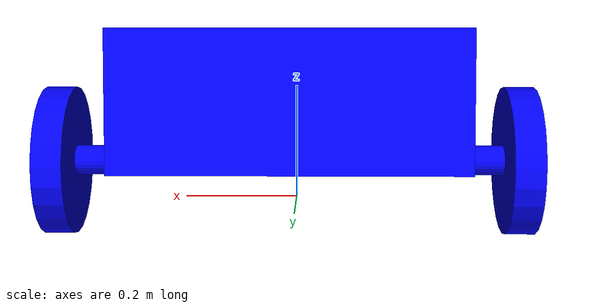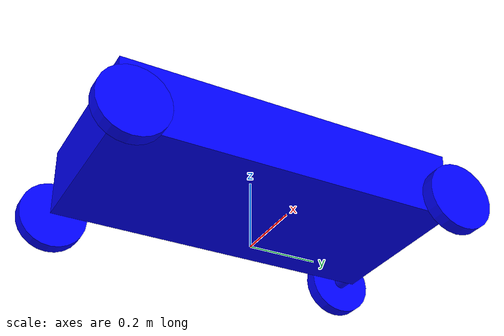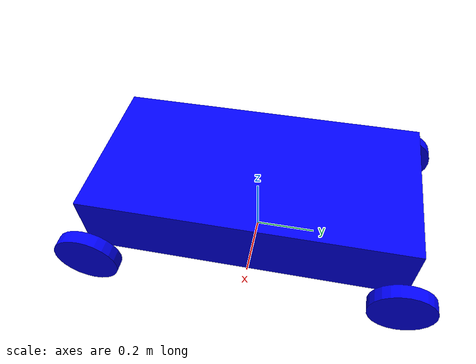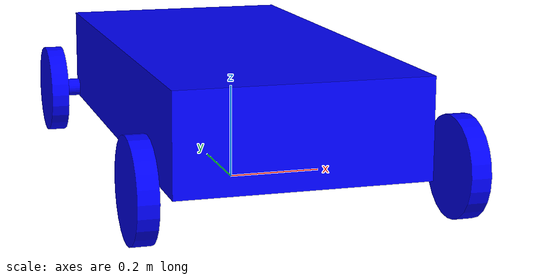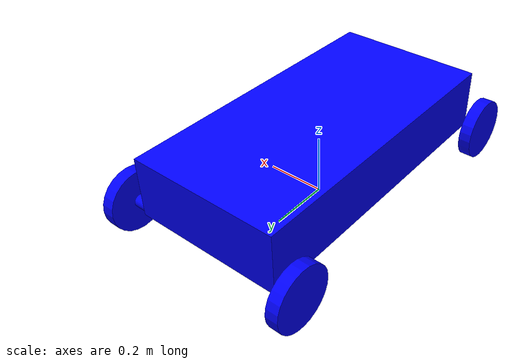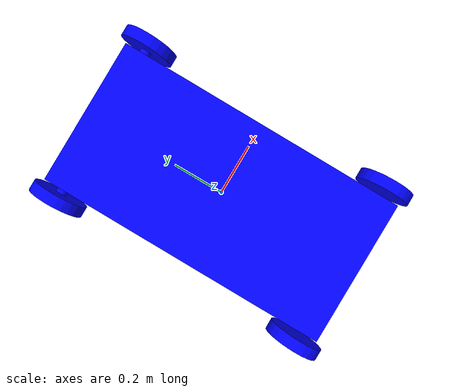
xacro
<?xml version="1.0"?>
<robot xmlns:xacro="http://www.ros.org/wiki/xacro" name="simple_car">

<xacro:include filename="inertial.xacro"/>

    <xacro:property name="wheel_width" value="0.04"/>
    <xacro:property name="wheel_radius" value="0.1"/>

    <!-- Wheel macro -->
    <xacro:macro name="wheel" params="name">
        <link name="${name}">
            <visual>
                <geometry>
                    <cylinder length="${wheel_width}" radius="${wheel_radius}" />
                </geometry>
                <material name="blue"/>
            </visual>
            <collision>
                <geometry>
                    <cylinder length="${wheel_width}" radius="${wheel_radius}" />
                </geometry>
            </collision>
             <xacro:inertial_cylinder mass="0.1" length="${wheel_width}" radius="${wheel_radius}"/>
        </link>

        <gazebo reference="${name}">
            <material>Gazebo/Blue</material>
        </gazebo>

    </xacro:macro>

    <xacro:property name="hinge_width" value="0.04"/>
    <xacro:property name="hinge_radius" value="0.02"/>

    <!-- Hinge macro -->
    <xacro:macro name="hinge" params="name">
        <link name="${name}">
            <visual>
                <geometry>
                    <cylinder length="${hinge_width}" radius="${hinge_radius}" />
                </geometry>
                <material name="blue"/>
            </visual>
            <collision>
                <geometry>
                    <cylinder length="${hinge_width}" radius="${hinge_radius}" />
                </geometry>
            </collision>
             <xacro:inertial_cylinder mass="0.1" length="${hinge_width}" radius="${hinge_radius}"/>
        </link>

        <gazebo reference="${name}">
            <material>Gazebo/Blue</material>
        </gazebo>

    </xacro:macro>

  <!-- Base Link -->

  <link name="base_link">
  </link>

  <!-- Chassis Link -->
  <link name="chassis_link">
    <visual>
      <geometry>
        <box size="0.5 1.0 0.2"/>
      </geometry>
      <origin xyz="0 0 0" rpy="0 0 0"/>
      <material name="blue">
        <color rgba="0 0 1 1"/>
      </material>
    </visual>

    <xacro:inertial_box mass="0.5" x="0.5" y="1.0" z="0.15"/>

  </link>

  <gazebo reference="chassis_link">
        <material>Gazebo/Orange</material>
  </gazebo>

 <!-- Base Chassis Joint -->
  <joint name="base_chassis_joint" type="fixed">
      <parent link="base_link"/>
      <child link="chassis_link"/>
      <origin xyz="0 0 0.2" rpy="0 0 0 "/>
  </joint>

  <!-- Front Left Hinge -->
  <xacro:hinge name="front_left_hinge"/>

  <joint name="front_left_hinge_joint" type="revolute">
        <parent link="chassis_link"/>
        <child link="front_left_hinge"/>
        <origin xyz="-0.27 0.48 -0.08" rpy="0 ${-pi/2} 0"/>
        <limit upper="0.5236" lower="-0.5236" velocity="20" effort="1"/>
        <axis xyz="1 0 0"/>
  </joint>

   <gazebo reference="front_left_hinge">
       <material>Gazebo/Green</material>
   </gazebo>

  <!-- Front Left Wheel -->
  <xacro:wheel name="front_left_link"/>

  <joint name="front_left_joint" type="continuous">
        <parent link="front_left_hinge"/>
        <child link="front_left_link"/>
        <origin xyz="0.0 0.0 0.04" rpy="0 0 0"/>
        <axis xyz="0 0 1"/>
  </joint>

   <gazebo reference="front_left_link">
       <material>Gazebo/Red</material>
   </gazebo>

  <!-- Front Right Hinge -->
  <xacro:hinge name="front_right_hinge"/>

  <joint name="front_right_hinge_joint" type="revolute">
        <parent link="chassis_link"/>
        <child link="front_right_hinge"/>
        <origin xyz="0.27 0.48 -0.08" rpy="0 ${-pi/2} 0"/>
        <limit upper="0.5236" lower="-0.5236" velocity="20" effort="1"/>
        <axis xyz="1 0 0"/>
  </joint>

   <gazebo reference="front_right_hinge">
       <material>Gazebo/Green</material>
   </gazebo>

  <!-- Front Right Wheel -->
  <xacro:wheel name="front_right_link"/>

  <joint name="front_right_joint" type="continuous">
        <parent link="front_right_hinge"/>
        <child link="front_right_link"/>
        <origin xyz="0 0 -0.04" rpy="0 0 0"/>
        <axis xyz="0 0 1"/>
  </joint>

  <gazebo reference="front_right_link">
       <material>Gazebo/Red</material>
  </gazebo>

  <!-- Rear Left Wheel -->
  <xacro:wheel name="rear_left_link"/>

  <joint name="rear_left_joint" type="continuous">
        <parent link="chassis_link"/>
        <child link="rear_left_link"/>
        <origin xyz="-0.31 -0.48 -0.08" rpy="0 ${-pi/2} 0"/>
        <axis xyz="0 0 1"/>
  </joint>

  <!-- Rear Right Wheel -->
  <xacro:wheel name="rear_right_link" />

  <joint name="rear_right_joint" type="continuous">
        <parent link="chassis_link"/>
        <child link="rear_right_link"/>
        <origin xyz="0.31 -0.48 -0.08" rpy="0 ${-pi/2} 0"/> <!-- Default value for x is "0.27" -->
        <axis xyz="0 0 1"/>
  </joint>

  <xacro:include filename="ros2_ack.xacro"/>

</robot>
